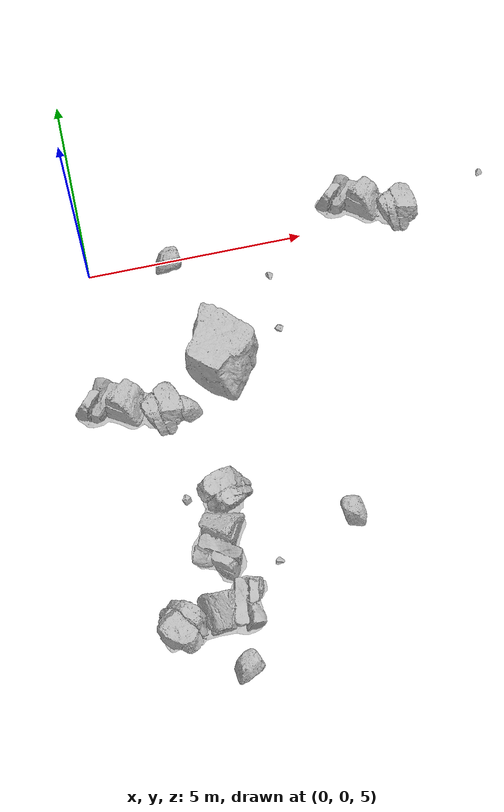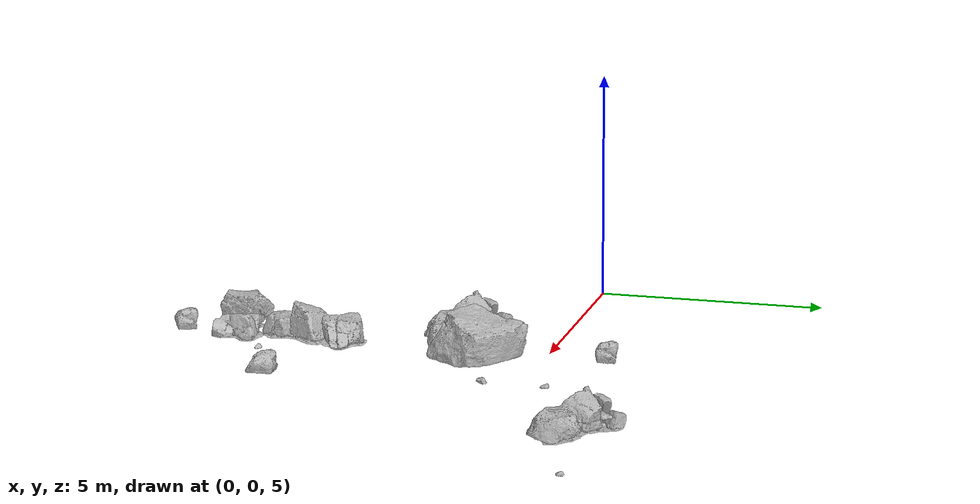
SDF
<sdf version="1.7">
 <world name="marsyard">
  <model name="Rock_3">
   <static>true</static>
   <pose>1.1235 -8.1829 4.0000 0.0000 0.0000 0.1641</pose>
   <link name="link">
    <visual name="visual">
     <geometry><mesh><uri>package://rock_generator/rocks_ws/rock_2/meshes/rock_2.stl</uri></mesh></geometry>
    </visual>
    <collision name="collision">
     <geometry><mesh><uri>package://rock_generator/rocks_ws/rock_2/meshes/rock_2.stl</uri></mesh></geometry>
    </collision>
   </link>
  </model>
  <model name="Rock_50">
   <static>true</static>
   <pose>4.1925 -0.2992 4.0000 0.0000 0.0000 -1.7812</pose>
   <link name="link">
    <visual name="visual">
     <geometry><mesh><uri>package://rock_generator/rocks_ws/rock_7/meshes/rock_7.stl</uri></mesh></geometry>
    </visual>
    <collision name="collision">
     <geometry><mesh><uri>package://rock_generator/rocks_ws/rock_7/meshes/rock_7.stl</uri></mesh></geometry>
    </collision>
   </link>
  </model>
  <model name="Rock_60">
   <static>true</static>
   <pose>4.5825 -6.6271 4.0000 0.0000 0.0000 2.6611</pose>
   <link name="link">
    <visual name="visual">
     <geometry><mesh><uri>package://rock_generator/rocks_ws/rock_3/meshes/rock_3.stl</uri></mesh></geometry>
    </visual>
    <collision name="collision">
     <geometry><mesh><uri>package://rock_generator/rocks_ws/rock_3/meshes/rock_3.stl</uri></mesh></geometry>
    </collision>
   </link>
  </model>
  <model name="Rock_84">
   <static>true</static>
   <pose>1.8565 0.5590 4.0000 0.0000 0.0000 1.1785</pose>
   <link name="link">
    <visual name="visual">
     <geometry><mesh><uri>package://rock_generator/rocks_ws/rock_3/meshes/rock_3.stl</uri></mesh></geometry>
    </visual>
    <collision name="collision">
     <geometry><mesh><uri>package://rock_generator/rocks_ws/rock_3/meshes/rock_3.stl</uri></mesh></geometry>
    </collision>
   </link>
  </model>
  <model name="Rock_91">
   <static>true</static>
   <pose>10.0035 1.4524 4.0000 0.0000 0.0000 -2.5600</pose>
   <link name="link">
    <visual name="visual">
     <geometry><mesh><uri>package://rock_generator/rocks_ws/rock_7/meshes/rock_7.stl</uri></mesh></geometry>
    </visual>
    <collision name="collision">
     <geometry><mesh><uri>package://rock_generator/rocks_ws/rock_7/meshes/rock_7.stl</uri></mesh></geometry>
    </collision>
   </link>
  </model>
  <model name="Rock_101">
   <static>true</static>
   <pose>4.0898 -1.7538 4.0000 0.0000 0.0000 -0.4284</pose>
   <link name="link">
    <visual name="visual">
     <geometry><mesh><uri>package://rock_generator/rocks_ws/rock_9/meshes/rock_9.stl</uri></mesh></geometry>
    </visual>
    <collision name="collision">
     <geometry><mesh><uri>package://rock_generator/rocks_ws/rock_9/meshes/rock_9.stl</uri></mesh></geometry>
    </collision>
   </link>
  </model>
  <model name="Rock_104">
   <static>true</static>
   <pose>1.1346 -5.4759 4.0000 0.0000 0.0000 2.6207</pose>
   <link name="link">
    <visual name="visual">
     <geometry><mesh><uri>package://rock_generator/rocks_ws/rock_9/meshes/rock_9.stl</uri></mesh></geometry>
    </visual>
    <collision name="collision">
     <geometry><mesh><uri>package://rock_generator/rocks_ws/rock_9/meshes/rock_9.stl</uri></mesh></geometry>
    </collision>
   </link>
  </model>
  <model name="Rock_125">
   <static>true</static>
   <pose>1.5326 -3.4366 4.0000 0.0000 0.0000 -2.8942</pose>
   <link name="link">
    <visual name="visual">
     <geometry><mesh><uri>package://rock_generator/rocks_ws/rock_3/meshes/rock_3.stl</uri></mesh></geometry>
    </visual>
    <collision name="collision">
     <geometry><mesh><uri>package://rock_generator/rocks_ws/rock_3/meshes/rock_3.stl</uri></mesh></geometry>
    </collision>
   </link>
  </model>
  <model name="Rock_134">
   <static>true</static>
   <pose>1.7962 -6.1595 4.0000 0.0000 0.0000 -1.8658</pose>
   <link name="link">
    <visual name="visual">
     <geometry><mesh><uri>package://rock_generator/rocks_ws/rock_2/meshes/rock_2.stl</uri></mesh></geometry>
    </visual>
    <collision name="collision">
     <geometry><mesh><uri>package://rock_generator/rocks_ws/rock_2/meshes/rock_2.stl</uri></mesh></geometry>
    </collision>
   </link>
  </model>
  <model name="Rock_136">
   <static>true</static>
   <pose>7.0907 1.0641 4.0000 0.0000 0.0000 2.6806</pose>
   <link name="link">
    <visual name="visual">
     <geometry><mesh><uri>package://rock_generator/rocks_ws/rock_2/meshes/rock_2.stl</uri></mesh></geometry>
    </visual>
    <collision name="collision">
     <geometry><mesh><uri>package://rock_generator/rocks_ws/rock_2/meshes/rock_2.stl</uri></mesh></geometry>
    </collision>
   </link>
  </model>
  <model name="Rock_151">
   <static>true</static>
   <pose>1.6138 -9.3718 4.0000 0.0000 0.0000 1.4882</pose>
   <link name="link">
    <visual name="visual">
     <geometry><mesh><uri>package://rock_generator/rocks_ws/rock_3/meshes/rock_3.stl</uri></mesh></geometry>
    </visual>
    <collision name="collision">
     <geometry><mesh><uri>package://rock_generator/rocks_ws/rock_3/meshes/rock_3.stl</uri></mesh></geometry>
    </collision>
   </link>
  </model>
  <model name="Rock_152">
   <static>true</static>
   <pose>2.7925 -7.2944 4.0000 0.0000 0.0000 -0.5422</pose>
   <link name="link">
    <visual name="visual">
     <geometry><mesh><uri>package://rock_generator/rocks_ws/rock_7/meshes/rock_7.stl</uri></mesh></geometry>
    </visual>
    <collision name="collision">
     <geometry><mesh><uri>package://rock_generator/rocks_ws/rock_7/meshes/rock_7.stl</uri></mesh></geometry>
    </collision>
   </link>
  </model>
  <model name="Rock_160">
   <static>true</static>
   <pose>2.4727 -2.1689 4.0000 0.0000 0.0000 0.0958</pose>
   <link name="link">
    <visual name="visual">
     <geometry><mesh><uri>package://rock_generator/rocks_ws/rock_1/meshes/rock_1.stl</uri></mesh></geometry>
    </visual>
    <collision name="collision">
     <geometry><mesh><uri>package://rock_generator/rocks_ws/rock_1/meshes/rock_1.stl</uri></mesh></geometry>
    </collision>
   </link>
  </model>
  <model name="Rock_185">
   <static>true</static>
   <pose>0.4361 -3.0664 4.0000 0.0000 0.0000 2.7918</pose>
   <link name="link">
    <visual name="visual">
     <geometry><mesh><uri>package://rock_generator/rocks_ws/rock_2/meshes/rock_2.stl</uri></mesh></geometry>
    </visual>
    <collision name="collision">
     <geometry><mesh><uri>package://rock_generator/rocks_ws/rock_2/meshes/rock_2.stl</uri></mesh></geometry>
    </collision>
   </link>
  </model>
 </world>
</sdf>
